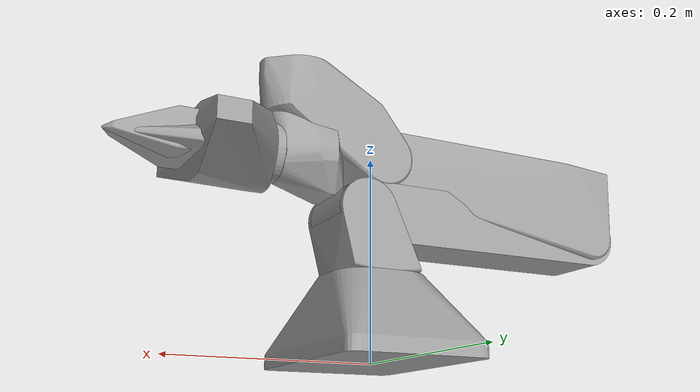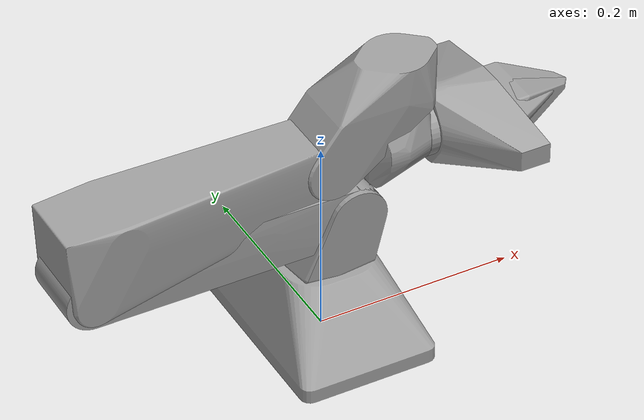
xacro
<?xml version="1.0"?>
<robot xmlns:xacro="http://wiki.ros.org/xacro" name="rebot_b601dm">
    <xacro:arg name="prefix" default="" />
    <xacro:arg name="mesh_package" default="rebot_b601dm_description" />
    <xacro:arg name="sim_isaac" default="false" />
    <xacro:arg name="initial_positions_file"
        default="$(find isaac_ros_manipulation_rebot_robot_description)/config/initial_positions.yaml"/>

    <!-- Wrist camera extrinsic. Defaults are the sim profile values from
         rebot_b601dm_description/urdf/rebot_b601dm_full.urdf.xacro. -->
    <xacro:arg name="camera_mount_xyz" default="0.05 0 0.06" />
    <xacro:arg name="camera_mount_rpy" default="0 0 0" />
    <xacro:arg name="camera_link_xyz" default="0 0 0" />
    <xacro:arg name="camera_link_rpy" default="0 0 0" />
    <xacro:arg name="use_camera" default="true" />

    <xacro:property name="initial_positions_file" default="$(arg initial_positions_file)"/>

    <xacro:include filename="$(find rebot_b601dm_description)/urdf/rebot_b601dm_arm.xacro" />
    <xacro:include filename="$(find rebot_b601dm_description)/urdf/rebot_b601dm_gripper.xacro" />
    <xacro:include filename="$(find rebot_b601dm_description)/urdf/rebot_b601dm_camera.xacro" />

    <xacro:rebot_b601dm_arm prefix="$(arg prefix)" mesh_package="$(arg mesh_package)" />
    <xacro:rebot_b601dm_gripper prefix="$(arg prefix)" mesh_package="$(arg mesh_package)" />

    <link name="world" />
    <joint name="$(arg prefix)world_to_base_link" type="fixed">
        <origin xyz="0 0 0" rpy="0 0 0" />
        <parent link="world" />
        <child link="$(arg prefix)base_link" />
    </joint>

    <xacro:if value="$(arg use_camera)">
        <xacro:rebot_b601dm_camera prefix="$(arg prefix)"
            mount_xyz="$(arg camera_mount_xyz)"
            mount_rpy="$(arg camera_mount_rpy)"
            cam_xyz="$(arg camera_link_xyz)"
            cam_rpy="$(arg camera_link_rpy)"
            name="camera" />
    </xacro:if>

    <!-- TopicBasedSystem ros2_control for Isaac Sim -->
    <xacro:if value="$(arg sim_isaac)">
        <xacro:include filename="$(find isaac_ros_manipulation_rebot_robot_description)/urdf/rebot_sim.ros2_control.xacro" />
        <xacro:rebot_ros2_control name="rebot_ros2_control_sim"
            initial_positions="${xacro.load_yaml(initial_positions_file)}"/>
    </xacro:if>
</robot>

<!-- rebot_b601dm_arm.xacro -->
<robot xmlns:xacro="http://www.ros.org/wiki/xacro">

  <!-- Velocity limits, kept as properties so the values appear exactly once. -->
  <xacro:property name="vel_j123" value="5.0"/>
  <xacro:property name="vel_j456" value="3.0"/>

  <xacro:macro name="rebot_b601dm_arm" params="prefix mesh_package">

    <link name="${prefix}base_link">
      <inertial>
        <origin xyz="-2.70523135620574E-06 -7.70134319499296E-06 0.028980835090929" rpy="0 0 0"/>
        <mass value="0.79874480798149"/>
        <inertia ixx="0.00167922927706365" ixy="1.88775164237686E-09" ixz="-1.97136369561029E-08"
                 iyy="0.00100413042930826" iyz="2.1823444305057E-07"  izz="0.00243992061460991"/>
      </inertial>
      <visual>
        <origin xyz="0 0 0" rpy="0 0 0"/>
        <geometry><mesh filename="package://${mesh_package}/meshes/visual/base_link.STL"/></geometry>
        <material name="rebot_grey"><color rgba="0.627450980392157 0.627450980392157 0.627450980392157 1"/></material>
      </visual>
      <collision>
        <origin xyz="0 0 0" rpy="0 0 0"/>
        <geometry><mesh filename="package://${mesh_package}/meshes/collision/base_link.STL"/></geometry>
      </collision>
    </link>

    <link name="${prefix}link1">
      <inertial>
        <origin xyz="1.20584908205569E-05 -0.00052246270024925 0.0197721792915801" rpy="0 0 0"/>
        <mass value="0.0840736498625263"/>
        <inertia ixx="8.53930680558479E-05" ixy="5.36083090564592E-11" ixz="8.1878892265138E-06"
                 iyy="5.08885968641724E-05" iyz="1.61532065580032E-10" izz="8.03867731313707E-05"/>
      </inertial>
      <visual>
        <origin xyz="0 0 0" rpy="0 0 0"/>
        <geometry><mesh filename="package://${mesh_package}/meshes/visual/link1.STL"/></geometry>
        <material name="rebot_grey"/>
      </visual>
      <collision>
        <origin xyz="0 0 0" rpy="0 0 0"/>
        <geometry><mesh filename="package://${mesh_package}/meshes/collision/link1.STL"/></geometry>
      </collision>
    </link>

    <joint name="${prefix}joint1" type="revolute">
      <origin xyz="-8.416E-05 0 0.08465" rpy="0 0 0"/>
      <parent link="${prefix}base_link"/>
      <child  link="${prefix}link1"/>
      <axis xyz="0 0 1"/>
      <limit lower="-2.8" upper="2.8" effort="27" velocity="${vel_j123}"/>
    </joint>

    <link name="${prefix}link2">
      <inertial>
        <origin xyz="-0.13224463371047 -0.00305031595315752 -0.0309299400248282" rpy="0 0 0"/>
        <mass value="0.710394385134637"/>
        <inertia ixx="0.00025002655459552" ixy="1.60716279794484E-06" ixz="2.51351488848234E-09"
                 iyy="0.00186321981627926" iyz="4.36542160316282E-07" izz="0.00186007710433815"/>
      </inertial>
      <visual>
        <origin xyz="0 0 0" rpy="0 0 0"/>
        <geometry><mesh filename="package://${mesh_package}/meshes/visual/link2.STL"/></geometry>
        <material name="rebot_grey"/>
      </visual>
      <collision>
        <origin xyz="0 0 0" rpy="0 0 0"/>
        <geometry><mesh filename="package://${mesh_package}/meshes/collision/link2.STL"/></geometry>
      </collision>
    </link>

    <joint name="${prefix}joint2" type="revolute">
      <origin xyz="0.020084 0.031625 0.05555" rpy="-1.5708 0 0"/>
      <parent link="${prefix}link1"/>
      <child  link="${prefix}link2"/>
      <axis xyz="0 0 -1"/>
      <limit lower="-3.14" upper="0" effort="27" velocity="${vel_j123}"/>
    </joint>

    <link name="${prefix}link3">
      <inertial>
        <origin xyz="0.121507513231219 -0.0537568110789665 -0.0310861781010256" rpy="0 0 0"/>
        <mass value="0.524941641478664"/>
        <inertia ixx="0.000160157099221732" ixy="-1.6160403467948E-05" ixz="-3.33082723997513E-06"
                 iyy="0.00124905589930288"  iyz="2.96940939137566E-07" izz="0.00125568117526574"/>
      </inertial>
      <visual>
        <origin xyz="0 0 0" rpy="0 0 0"/>
        <geometry><mesh filename="package://${mesh_package}/meshes/visual/link3.STL"/></geometry>
        <material name="rebot_grey"/>
      </visual>
      <collision>
        <origin xyz="0 0 0" rpy="0 0 0"/>
        <geometry><mesh filename="package://${mesh_package}/meshes/collision/link3.STL"/></geometry>
      </collision>
    </link>

    <joint name="${prefix}joint3" type="revolute">
      <origin xyz="-0.264 0 0" rpy="0 0 0"/>
      <parent link="${prefix}link2"/>
      <child  link="${prefix}link3"/>
      <axis xyz="0 0 1"/>
      <limit lower="-3.14" upper="0" effort="27" velocity="${vel_j123}"/>
    </joint>

    <link name="${prefix}link4">
      <inertial>
        <origin xyz="0.0612381846323297 -0.0515229512574568 -0.0303340352965348" rpy="0 0 0"/>
        <mass value="0.191139210973019"/>
        <inertia ixx="7.18184289370392E-05" ixy="-1.12301944951731E-05" ixz="-5.19641435494074E-08"
                 iyy="0.000112900067589117" iyz="2.21782677668291E-07"  izz="0.000101141504876404"/>
      </inertial>
      <visual>
        <origin xyz="0 0 0" rpy="0 0 0"/>
        <geometry><mesh filename="package://${mesh_package}/meshes/visual/link4.STL"/></geometry>
        <material name="rebot_grey"/>
      </visual>
      <collision>
        <origin xyz="0 0 0" rpy="0 0 0"/>
        <geometry><mesh filename="package://${mesh_package}/meshes/collision/link4.STL"/></geometry>
      </collision>
    </link>

    <joint name="${prefix}joint4" type="revolute">
      <origin xyz="0.2426 -0.054 -0.001625" rpy="0 0 0"/>
      <parent link="${prefix}link3"/>
      <child  link="${prefix}link4"/>
      <axis xyz="0 0 1"/>
      <limit lower="-1.87" upper="1.57" effort="7" velocity="${vel_j456}"/>
    </joint>

    <link name="${prefix}link5">
      <inertial>
        <origin xyz="-0.00504933072901427 1.74603011302099E-06 0.0387866303374511" rpy="0 0 0"/>
        <mass value="0.150004102113546"/>
        <inertia ixx="6.79196566487009E-05" ixy="-7.20237013118825E-10" ixz="-2.82554291275232E-06"
                 iyy="5.17186991502111E-05" iyz="9.87947763397051E-09"  izz="5.43656904496111E-05"/>
      </inertial>
      <visual>
        <origin xyz="0 0 0" rpy="0 0 0"/>
        <geometry><mesh filename="package://${mesh_package}/meshes/visual/link5.STL"/></geometry>
        <material name="rebot_grey"/>
      </visual>
      <collision>
        <origin xyz="0 0 0" rpy="0 0 0"/>
        <geometry><mesh filename="package://${mesh_package}/meshes/collision/link5.STL"/></geometry>
      </collision>
    </link>

    <joint name="${prefix}joint5" type="revolute">
      <origin xyz="0.078308 -0.0375 -0.03" rpy="-1.5708 0 0"/>
      <parent link="${prefix}link4"/>
      <child  link="${prefix}link5"/>
      <axis xyz="0 0 1"/>
      <limit lower="-1.57" upper="1.57" effort="7" velocity="${vel_j456}"/>
    </joint>

    <link name="${prefix}link6">
      <inertial>
        <origin xyz="-1.76034430143801E-05 7.61449749622373E-09 0.00431722560895041" rpy="0 0 0"/>
        <mass value="0.0187271664583674"/>
        <inertia ixx="4.42801172036323E-06" ixy="1.26927907319828E-13" ixz="-1.52049684129749E-10"
                 iyy="4.37712746743999E-06" iyz="-2.5907655197107E-13" izz="8.55249688102954E-06"/>
      </inertial>
      <visual>
        <origin xyz="0 0 0" rpy="0 0 0"/>
        <geometry><mesh filename="package://${mesh_package}/meshes/visual/link6.STL"/></geometry>
        <material name="rebot_grey"/>
      </visual>
      <collision>
        <origin xyz="0 0 0" rpy="0 0 0"/>
        <geometry><mesh filename="package://${mesh_package}/meshes/collision/link6.STL"/></geometry>
      </collision>
    </link>

    <joint name="${prefix}joint6" type="revolute">
      <origin xyz="0.023692 0 0.04" rpy="0 1.5708 0"/>
      <parent link="${prefix}link5"/>
      <child  link="${prefix}link6"/>
      <axis xyz="0 0 1"/>
      <limit lower="-3.14" upper="3.14" effort="7" velocity="${vel_j456}"/>
    </joint>

  </xacro:macro>
</robot>

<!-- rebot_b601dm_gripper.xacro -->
<robot xmlns:xacro="http://www.ros.org/wiki/xacro">

  <xacro:property name="jaw_lower"    value="0.0"/>
  <xacro:property name="jaw_upper"    value="0.0715"/>
  <xacro:property name="jaw_effort"   value="100"/>
  <xacro:property name="jaw_velocity" value="0.2"/>

  <xacro:macro name="rebot_b601dm_gripper" params="prefix mesh_package">

    <link name="${prefix}gripper_link">
      <inertial>
        <origin xyz="-0.11400456131826 7.30809328589541E-05 -8.098254686284E-08" rpy="0 0 0"/>
        <mass value="0.181800159145243"/>
        <inertia ixx="0.000232385828322385" ixy="-2.77584025941111E-07" ixz="-6.04874349510246E-10"
                 iyy="5.85085867377427E-05"  iyz="-1.15493362444215E-08" izz="0.000205213535851537"/>
      </inertial>
      <visual>
        <origin xyz="0 0 0" rpy="0 0 0"/>
        <geometry><mesh filename="package://${mesh_package}/meshes/visual/gripper_link.STL"/></geometry>
        <material name="rebot_grey"/>
      </visual>
      <collision>
        <origin xyz="0 0 0" rpy="0 0 0"/>
        <geometry><mesh filename="package://${mesh_package}/meshes/collision/gripper_link.STL"/></geometry>
      </collision>
    </link>

    <joint name="${prefix}gripper_joint" type="fixed">
      <origin xyz="0 0 0.15971" rpy="0 -1.5708 0"/>
      <parent link="${prefix}link6"/>
      <child  link="${prefix}gripper_link"/>
    </joint>

    <!-- Canonical tool centre point. Massless frame, no geometry. -->
    <link name="${prefix}gripper_tcp"/>
    <joint name="${prefix}gripper_tcp_joint" type="fixed">
      <origin xyz="-0.0443 0 0" rpy="0 0 0"/>
      <parent link="${prefix}gripper_link"/>
      <child  link="${prefix}gripper_tcp"/>
    </joint>

    <link name="${prefix}gripper_left">
      <inertial>
        <origin xyz="0.00937154605945142 -0.0183514409006279 -0.00213050813223617" rpy="0 0 0"/>
        <mass value="0.0423278952416158"/>
        <inertia ixx="9.68819007445228E-06" ixy="-1.14547785891207E-06" ixz="1.82410432419993E-08"
                 iyy="9.7195653452821E-06"  iyz="1.20737618180169E-07"  izz="1.13638462227589E-05"/>
      </inertial>
      <visual>
        <origin xyz="0 0 0" rpy="0 0 0"/>
        <geometry><mesh filename="package://${mesh_package}/meshes/visual/gripper_left.STL"/></geometry>
        <material name="rebot_grey"/>
      </visual>
      <collision>
        <origin xyz="0 0 0" rpy="0 0 0"/>
        <geometry><mesh filename="package://${mesh_package}/meshes/collision/gripper_left.STL"/></geometry>
      </collision>
    </link>

    <joint name="${prefix}gripper_joint1" type="prismatic">
      <origin xyz="-0.042091 2.7531E-05 -1.3031E-05" rpy="0 0 -1.5708"/>
      <parent link="${prefix}gripper_link"/>
      <child  link="${prefix}gripper_left"/>
      <axis xyz="1 0 0"/>
      <limit lower="${jaw_lower}" upper="${jaw_upper}" effort="${jaw_effort}" velocity="${jaw_velocity}"/>
    </joint>

    <link name="${prefix}gripper_right">
      <inertial>
        <origin xyz="0.00937154599936671 0.0183514410059713 0.00213050822993754" rpy="0 0 0"/>
        <mass value="0.0423278949561274"/>
        <inertia ixx="9.68819002375832E-06" ixy="1.14547786360874E-06"  ixz="-1.82410118281856E-08"
                 iyy="9.7195652747221E-06"  iyz="1.20737613592695E-07"  izz="1.13638461944347E-05"/>
      </inertial>
      <visual>
        <origin xyz="0 0 0" rpy="0 0 0"/>
        <geometry><mesh filename="package://${mesh_package}/meshes/visual/gripper_right.STL"/></geometry>
        <material name="rebot_grey"/>
      </visual>
      <collision>
        <origin xyz="0 0 0" rpy="0 0 0"/>
        <geometry><mesh filename="package://${mesh_package}/meshes/collision/gripper_right.STL"/></geometry>
      </collision>
    </link>

    <joint name="${prefix}gripper_joint2" type="prismatic">
      <origin xyz="-0.042091 -2.7531E-05 1.3031E-05" rpy="0 0 1.5708"/>
      <parent link="${prefix}gripper_link"/>
      <child  link="${prefix}gripper_right"/>
      <axis xyz="1 0 0"/>
      <limit lower="${jaw_lower}" upper="${jaw_upper}" effort="${jaw_effort}" velocity="${jaw_velocity}"/>
      <mimic joint="${prefix}gripper_joint1" multiplier="1.0" offset="0.0"/>
    </joint>

  </xacro:macro>
</robot>

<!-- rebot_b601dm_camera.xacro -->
<robot xmlns:xacro="http://www.ros.org/wiki/xacro">

  <!-- REP 145 optical frame rotation: body (X fwd, Y left, Z up)
       -> optical (Z fwd, X right, Y down). -->
  <xacro:property name="optical_roll"  value="-1.5707963267948966"/>
  <xacro:property name="optical_pitch" value="0.0"/>
  <xacro:property name="optical_yaw"   value="-1.5707963267948966"/>

  <xacro:macro name="rebot_b601dm_camera"
               params="prefix
                       mount_xyz mount_rpy
                       cam_xyz:='0 0 0' cam_rpy:='0 0 0'
                       name:='camera'">

    <!-- Mechanical mount on the wrist. Massless frame; the physical bracket's
         collision volume is represented in the XRDF spheres, not here. -->
    <link name="${prefix}camera_mount"/>
    <joint name="${prefix}camera_mount_joint" type="fixed">
      <origin xyz="${mount_xyz}" rpy="${mount_rpy}"/>
      <parent link="${prefix}link6"/>
      <child  link="${prefix}camera_mount"/>
    </joint>

    <!-- Camera body frame. Identity w.r.t. the mount in the sim profile; the
         hand-eye result makes it non-identity on real hardware. -->
    <link name="${prefix}${name}_link"/>
    <joint name="${prefix}${name}_link_joint" type="fixed">
      <origin xyz="${cam_xyz}" rpy="${cam_rpy}"/>
      <parent link="${prefix}camera_mount"/>
      <child  link="${prefix}${name}_link"/>
    </joint>

    <!-- Colour optical frame: the parent of CameraInfo and of every published
         pose from FoundationPose. -->
    <link name="${prefix}${name}_color_optical_frame"/>
    <joint name="${prefix}${name}_color_optical_joint" type="fixed">
      <origin xyz="0 0 0" rpy="${optical_roll} ${optical_pitch} ${optical_yaw}"/>
      <parent link="${prefix}${name}_link"/>
      <child  link="${prefix}${name}_color_optical_frame"/>
    </joint>

    <link name="${prefix}${name}_depth_optical_frame"/>
    <joint name="${prefix}${name}_depth_optical_joint" type="fixed">
      <origin xyz="0 0 0" rpy="0 0 0"/>
      <parent link="${prefix}${name}_color_optical_frame"/>
      <child  link="${prefix}${name}_depth_optical_frame"/>
    </joint>

  </xacro:macro>
</robot>
